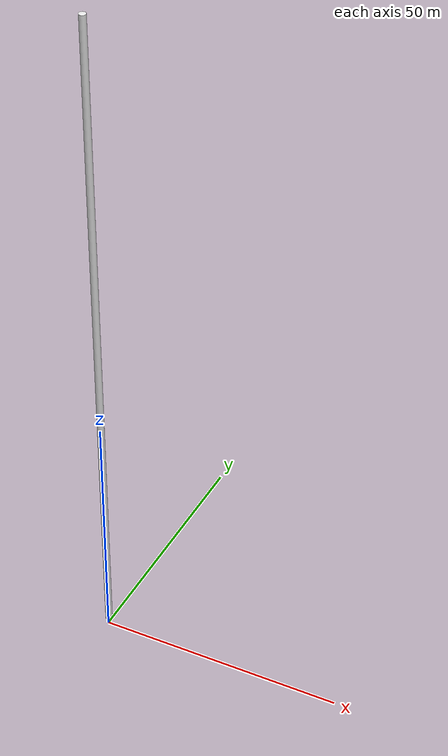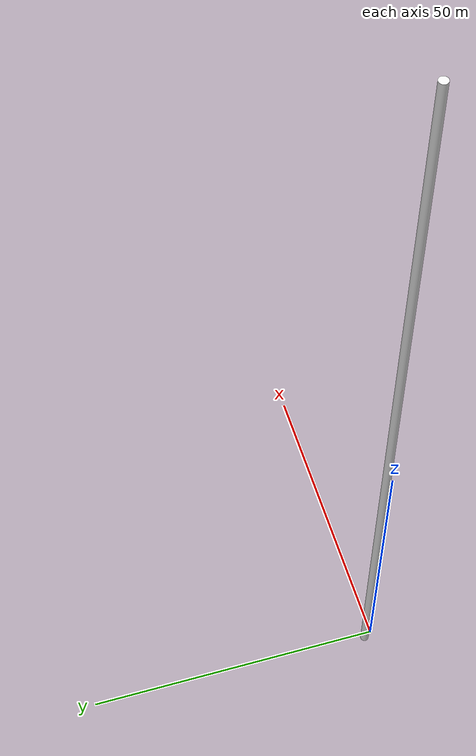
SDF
<?xml version="1.0" ?>
<sdf version="1.6">
  <model name="long_cylinder">
    <!-- Modelin sabit olması (düşmemesi) için static true -->
    <static>true</static>
    <link name="link">
      <!-- Modelin dünya içindeki varsayılan konumu ve yönü -->
      <pose>0 0 0 0 0 0</pose>
      <!-- Çarpışma (physics) şekli tanımı -->
      <collision name="collision">
        <geometry>
          <mesh>
            <uri>model://long_cylinder/meshes/long_cylinder.obj</uri>
            <scale>0.7 0.7 0.7</scale>
          </mesh>
        </geometry>
      </collision>
      <!-- Görsel (render) şekli tanımı -->
      <visual name="visual">
        <geometry>
          <mesh>
            <uri>model://long_cylinder/meshes/long_cylinder.obj</uri>
            <scale>0.7 0.7 0.7</scale>
          </mesh>
        </geometry>
        <material>
          <script>
            <!-- Gazebo'nun standart malzeme kütüphanesini kullan -->
            <uri>file://media/materials/scripts/gazebo.material</uri>
            <name>Gazebo/White</name>
          </script>
        </material>
      </visual>
    </link>
  </model>
</sdf>
